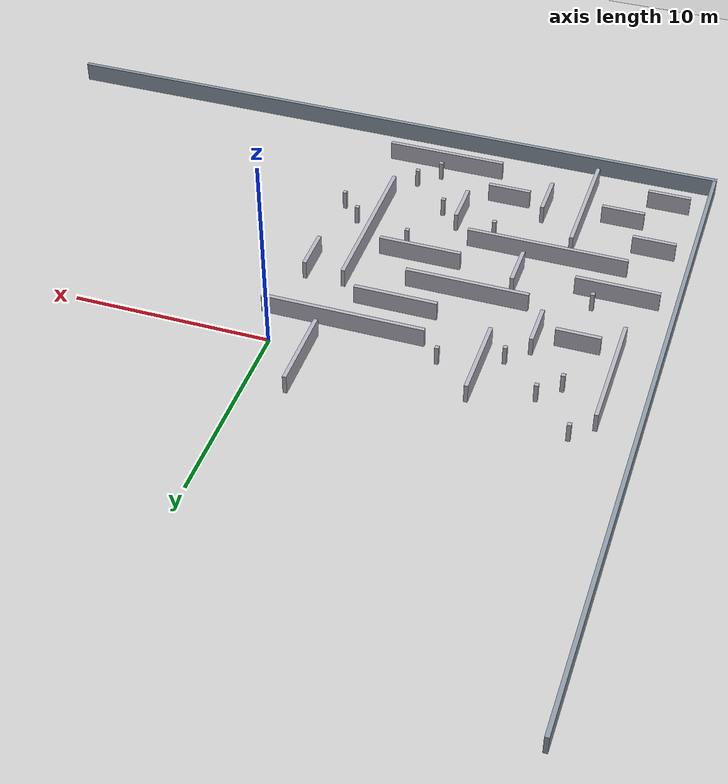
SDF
<sdf version="1.6">
 <world name="maze">
  <include><uri>model://sun</uri></include>
  <include><uri>model://ground_plane</uri></include>
  <model name="shell_s">
   <pose>0.000 -18.000 0.500 0 0 0</pose>
   <static>true</static>
   <link name="link">
    <collision name="collision"><geometry><box><size>36.200 0.200 1.000</size></box></geometry></collision>
    <visual name="visual">
     <geometry><box><size>36.200 0.200 1.000</size></box></geometry>
     <material><ambient>0.55 0.6 0.65 1</ambient><diffuse>0.55 0.6 0.65 1</diffuse></material>
    </visual>
   </link>
  </model>
  <model name="shell_w">
   <pose>-18.000 0.000 0.500 0 0 0</pose>
   <static>true</static>
   <link name="link">
    <collision name="collision"><geometry><box><size>0.200 36.200 1.000</size></box></geometry></collision>
    <visual name="visual">
     <geometry><box><size>0.200 36.200 1.000</size></box></geometry>
     <material><ambient>0.55 0.6 0.65 1</ambient><diffuse>0.55 0.6 0.65 1</diffuse></material>
    </visual>
   </link>
  </model>
  <model name="mv000">
   <pose>-16.000 -2.000 0.500 0 0 0</pose>
   <static>true</static>
   <link name="link">
    <collision name="collision"><geometry><box><size>0.200 6.200 1.000</size></box></geometry></collision>
    <visual name="visual">
     <geometry><box><size>0.200 6.200 1.000</size></box></geometry>
     <material><ambient>0.7 0.7 0.75 1</ambient><diffuse>0.7 0.7 0.75 1</diffuse></material>
    </visual>
   </link>
  </model>
  <model name="mv003">
   <pose>-14.000 -7.000 0.500 0 0 0</pose>
   <static>true</static>
   <link name="link">
    <collision name="collision"><geometry><box><size>0.200 0.200 1.000</size></box></geometry></collision>
    <visual name="visual">
     <geometry><box><size>0.200 0.200 1.000</size></box></geometry>
     <material><ambient>0.7 0.7 0.75 1</ambient><diffuse>0.7 0.7 0.75 1</diffuse></material>
    </visual>
   </link>
  </model>
  <model name="mv004">
   <pose>-14.000 -1.000 0.500 0 0 0</pose>
   <static>true</static>
   <link name="link">
    <collision name="collision"><geometry><box><size>0.200 0.200 1.000</size></box></geometry></collision>
    <visual name="visual">
     <geometry><box><size>0.200 0.200 1.000</size></box></geometry>
     <material><ambient>0.7 0.7 0.75 1</ambient><diffuse>0.7 0.7 0.75 1</diffuse></material>
    </visual>
   </link>
  </model>
  <model name="mv006">
   <pose>-12.000 -14.000 0.500 0 0 0</pose>
   <static>true</static>
   <link name="link">
    <collision name="collision"><geometry><box><size>0.200 6.200 1.000</size></box></geometry></collision>
    <visual name="visual">
     <geometry><box><size>0.200 6.200 1.000</size></box></geometry>
     <material><ambient>0.7 0.7 0.75 1</ambient><diffuse>0.7 0.7 0.75 1</diffuse></material>
    </visual>
   </link>
  </model>
  <model name="mv007">
   <pose>-12.000 -4.000 0.500 0 0 0</pose>
   <static>true</static>
   <link name="link">
    <collision name="collision"><geometry><box><size>0.200 2.200 1.000</size></box></geometry></collision>
    <visual name="visual">
     <geometry><box><size>0.200 2.200 1.000</size></box></geometry>
     <material><ambient>0.7 0.7 0.75 1</ambient><diffuse>0.7 0.7 0.75 1</diffuse></material>
    </visual>
   </link>
  </model>
  <model name="mv011">
   <pose>-10.000 -14.000 0.500 0 0 0</pose>
   <static>true</static>
   <link name="link">
    <collision name="collision"><geometry><box><size>0.200 2.200 1.000</size></box></geometry></collision>
    <visual name="visual">
     <geometry><box><size>0.200 2.200 1.000</size></box></geometry>
     <material><ambient>0.7 0.7 0.75 1</ambient><diffuse>0.7 0.7 0.75 1</diffuse></material>
    </visual>
   </link>
  </model>
  <model name="mv012">
   <pose>-10.000 -8.000 0.500 0 0 0</pose>
   <static>true</static>
   <link name="link">
    <collision name="collision"><geometry><box><size>0.200 2.200 1.000</size></box></geometry></collision>
    <visual name="visual">
     <geometry><box><size>0.200 2.200 1.000</size></box></geometry>
     <material><ambient>0.7 0.7 0.75 1</ambient><diffuse>0.7 0.7 0.75 1</diffuse></material>
    </visual>
   </link>
  </model>
  <model name="mv013">
   <pose>-10.000 -1.000 0.500 0 0 0</pose>
   <static>true</static>
   <link name="link">
    <collision name="collision"><geometry><box><size>0.200 4.200 1.000</size></box></geometry></collision>
    <visual name="visual">
     <geometry><box><size>0.200 4.200 1.000</size></box></geometry>
     <material><ambient>0.7 0.7 0.75 1</ambient><diffuse>0.7 0.7 0.75 1</diffuse></material>
    </visual>
   </link>
  </model>
  <model name="mv016">
   <pose>-8.000 -11.000 0.500 0 0 0</pose>
   <static>true</static>
   <link name="link">
    <collision name="collision"><geometry><box><size>0.200 0.200 1.000</size></box></geometry></collision>
    <visual name="visual">
     <geometry><box><size>0.200 0.200 1.000</size></box></geometry>
     <material><ambient>0.7 0.7 0.75 1</ambient><diffuse>0.7 0.7 0.75 1</diffuse></material>
    </visual>
   </link>
  </model>
  <model name="mv017">
   <pose>-8.000 -1.000 0.500 0 0 0</pose>
   <static>true</static>
   <link name="link">
    <collision name="collision"><geometry><box><size>0.200 0.200 1.000</size></box></geometry></collision>
    <visual name="visual">
     <geometry><box><size>0.200 0.200 1.000</size></box></geometry>
     <material><ambient>0.7 0.7 0.75 1</ambient><diffuse>0.7 0.7 0.75 1</diffuse></material>
    </visual>
   </link>
  </model>
  <model name="mv020">
   <pose>-6.000 -12.000 0.500 0 0 0</pose>
   <static>true</static>
   <link name="link">
    <collision name="collision"><geometry><box><size>0.200 2.200 1.000</size></box></geometry></collision>
    <visual name="visual">
     <geometry><box><size>0.200 2.200 1.000</size></box></geometry>
     <material><ambient>0.7 0.7 0.75 1</ambient><diffuse>0.7 0.7 0.75 1</diffuse></material>
    </visual>
   </link>
  </model>
  <model name="mv023">
   <pose>-4.000 -15.000 0.500 0 0 0</pose>
   <static>true</static>
   <link name="link">
    <collision name="collision"><geometry><box><size>0.200 0.200 1.000</size></box></geometry></collision>
    <visual name="visual">
     <geometry><box><size>0.200 0.200 1.000</size></box></geometry>
     <material><ambient>0.7 0.7 0.75 1</ambient><diffuse>0.7 0.7 0.75 1</diffuse></material>
    </visual>
   </link>
  </model>
  <model name="mv024">
   <pose>-4.000 -9.000 0.500 0 0 0</pose>
   <static>true</static>
   <link name="link">
    <collision name="collision"><geometry><box><size>0.200 0.200 1.000</size></box></geometry></collision>
    <visual name="visual">
     <geometry><box><size>0.200 0.200 1.000</size></box></geometry>
     <material><ambient>0.7 0.7 0.75 1</ambient><diffuse>0.7 0.7 0.75 1</diffuse></material>
    </visual>
   </link>
  </model>
  <model name="mv027">
   <pose>-2.000 -9.000 0.500 0 0 0</pose>
   <static>true</static>
   <link name="link">
    <collision name="collision"><geometry><box><size>0.200 8.200 1.000</size></box></geometry></collision>
    <visual name="visual">
     <geometry><box><size>0.200 8.200 1.000</size></box></geometry>
     <material><ambient>0.7 0.7 0.75 1</ambient><diffuse>0.7 0.7 0.75 1</diffuse></material>
    </visual>
   </link>
  </model>
  <model name="mv028">
   <pose>-2.000 1.000 0.500 0 0 0</pose>
   <static>true</static>
   <link name="link">
    <collision name="collision"><geometry><box><size>0.200 4.200 1.000</size></box></geometry></collision>
    <visual name="visual">
     <geometry><box><size>0.200 4.200 1.000</size></box></geometry>
     <material><ambient>0.7 0.7 0.75 1</ambient><diffuse>0.7 0.7 0.75 1</diffuse></material>
    </visual>
   </link>
  </model>
  <model name="mv031">
   <pose>0.000 -11.000 0.500 0 0 0</pose>
   <static>true</static>
   <link name="link">
    <collision name="collision"><geometry><box><size>0.200 0.200 1.000</size></box></geometry></collision>
    <visual name="visual">
     <geometry><box><size>0.200 0.200 1.000</size></box></geometry>
     <material><ambient>0.7 0.7 0.75 1</ambient><diffuse>0.7 0.7 0.75 1</diffuse></material>
    </visual>
   </link>
  </model>
  <model name="mv032">
   <pose>0.000 -6.000 0.500 0 0 0</pose>
   <static>true</static>
   <link name="link">
    <collision name="collision"><geometry><box><size>0.200 2.200 1.000</size></box></geometry></collision>
    <visual name="visual">
     <geometry><box><size>0.200 2.200 1.000</size></box></geometry>
     <material><ambient>0.7 0.7 0.75 1</ambient><diffuse>0.7 0.7 0.75 1</diffuse></material>
    </visual>
   </link>
  </model>
  <model name="mh000">
   <pose>-16.000 -16.000 0.500 0 0 0</pose>
   <static>true</static>
   <link name="link">
    <collision name="collision"><geometry><box><size>2.200 0.200 1.000</size></box></geometry></collision>
    <visual name="visual">
     <geometry><box><size>2.200 0.200 1.000</size></box></geometry>
     <material><ambient>0.7 0.7 0.75 1</ambient><diffuse>0.7 0.7 0.75 1</diffuse></material>
    </visual>
   </link>
  </model>
  <model name="mh001">
   <pose>-4.000 -16.000 0.500 0 0 0</pose>
   <static>true</static>
   <link name="link">
    <collision name="collision"><geometry><box><size>6.200 0.200 1.000</size></box></geometry></collision>
    <visual name="visual">
     <geometry><box><size>6.200 0.200 1.000</size></box></geometry>
     <material><ambient>0.7 0.7 0.75 1</ambient><diffuse>0.7 0.7 0.75 1</diffuse></material>
    </visual>
   </link>
  </model>
  <model name="mh004">
   <pose>-14.000 -14.000 0.500 0 0 0</pose>
   <static>true</static>
   <link name="link">
    <collision name="collision"><geometry><box><size>2.200 0.200 1.000</size></box></geometry></collision>
    <visual name="visual">
     <geometry><box><size>2.200 0.200 1.000</size></box></geometry>
     <material><ambient>0.7 0.7 0.75 1</ambient><diffuse>0.7 0.7 0.75 1</diffuse></material>
    </visual>
   </link>
  </model>
  <model name="mh005">
   <pose>-8.000 -14.000 0.500 0 0 0</pose>
   <static>true</static>
   <link name="link">
    <collision name="collision"><geometry><box><size>2.200 0.200 1.000</size></box></geometry></collision>
    <visual name="visual">
     <geometry><box><size>2.200 0.200 1.000</size></box></geometry>
     <material><ambient>0.7 0.7 0.75 1</ambient><diffuse>0.7 0.7 0.75 1</diffuse></material>
    </visual>
   </link>
  </model>
  <model name="mh006">
   <pose>-3.000 -14.000 0.500 0 0 0</pose>
   <static>true</static>
   <link name="link">
    <collision name="collision"><geometry><box><size>0.200 0.200 1.000</size></box></geometry></collision>
    <visual name="visual">
     <geometry><box><size>0.200 0.200 1.000</size></box></geometry>
     <material><ambient>0.7 0.7 0.75 1</ambient><diffuse>0.7 0.7 0.75 1</diffuse></material>
    </visual>
   </link>
  </model>
  <model name="mh009">
   <pose>-16.000 -12.000 0.500 0 0 0</pose>
   <static>true</static>
   <link name="link">
    <collision name="collision"><geometry><box><size>2.200 0.200 1.000</size></box></geometry></collision>
    <visual name="visual">
     <geometry><box><size>2.200 0.200 1.000</size></box></geometry>
     <material><ambient>0.7 0.7 0.75 1</ambient><diffuse>0.7 0.7 0.75 1</diffuse></material>
    </visual>
   </link>
  </model>
  <model name="mh010">
   <pose>-5.000 -12.000 0.500 0 0 0</pose>
   <static>true</static>
   <link name="link">
    <collision name="collision"><geometry><box><size>0.200 0.200 1.000</size></box></geometry></collision>
    <visual name="visual">
     <geometry><box><size>0.200 0.200 1.000</size></box></geometry>
     <material><ambient>0.7 0.7 0.75 1</ambient><diffuse>0.7 0.7 0.75 1</diffuse></material>
    </visual>
   </link>
  </model>
  <model name="mh013">
   <pose>-11.000 -10.000 0.500 0 0 0</pose>
   <static>true</static>
   <link name="link">
    <collision name="collision"><geometry><box><size>8.200 0.200 1.000</size></box></geometry></collision>
    <visual name="visual">
     <geometry><box><size>8.200 0.200 1.000</size></box></geometry>
     <material><ambient>0.7 0.7 0.75 1</ambient><diffuse>0.7 0.7 0.75 1</diffuse></material>
    </visual>
   </link>
  </model>
  <model name="mh014">
   <pose>-1.000 -10.000 0.500 0 0 0</pose>
   <static>true</static>
   <link name="link">
    <collision name="collision"><geometry><box><size>0.200 0.200 1.000</size></box></geometry></collision>
    <visual name="visual">
     <geometry><box><size>0.200 0.200 1.000</size></box></geometry>
     <material><ambient>0.7 0.7 0.75 1</ambient><diffuse>0.7 0.7 0.75 1</diffuse></material>
    </visual>
   </link>
  </model>
  <model name="mh017">
   <pose>-15.000 -8.000 0.500 0 0 0</pose>
   <static>true</static>
   <link name="link">
    <collision name="collision"><geometry><box><size>4.200 0.200 1.000</size></box></geometry></collision>
    <visual name="visual">
     <geometry><box><size>4.200 0.200 1.000</size></box></geometry>
     <material><ambient>0.7 0.7 0.75 1</ambient><diffuse>0.7 0.7 0.75 1</diffuse></material>
    </visual>
   </link>
  </model>
  <model name="mh018">
   <pose>-5.000 -8.000 0.500 0 0 0</pose>
   <static>true</static>
   <link name="link">
    <collision name="collision"><geometry><box><size>4.200 0.200 1.000</size></box></geometry></collision>
    <visual name="visual">
     <geometry><box><size>4.200 0.200 1.000</size></box></geometry>
     <material><ambient>0.7 0.7 0.75 1</ambient><diffuse>0.7 0.7 0.75 1</diffuse></material>
    </visual>
   </link>
  </model>
  <model name="mh021">
   <pose>-8.000 -6.000 0.500 0 0 0</pose>
   <static>true</static>
   <link name="link">
    <collision name="collision"><geometry><box><size>6.200 0.200 1.000</size></box></geometry></collision>
    <visual name="visual">
     <geometry><box><size>6.200 0.200 1.000</size></box></geometry>
     <material><ambient>0.7 0.7 0.75 1</ambient><diffuse>0.7 0.7 0.75 1</diffuse></material>
    </visual>
   </link>
  </model>
  <model name="mh024">
   <pose>-14.000 -4.000 0.500 0 0 0</pose>
   <static>true</static>
   <link name="link">
    <collision name="collision"><geometry><box><size>2.200 0.200 1.000</size></box></geometry></collision>
    <visual name="visual">
     <geometry><box><size>2.200 0.200 1.000</size></box></geometry>
     <material><ambient>0.7 0.7 0.75 1</ambient><diffuse>0.7 0.7 0.75 1</diffuse></material>
    </visual>
   </link>
  </model>
  <model name="mh025">
   <pose>-5.000 -4.000 0.500 0 0 0</pose>
   <static>true</static>
   <link name="link">
    <collision name="collision"><geometry><box><size>4.200 0.200 1.000</size></box></geometry></collision>
    <visual name="visual">
     <geometry><box><size>4.200 0.200 1.000</size></box></geometry>
     <material><ambient>0.7 0.7 0.75 1</ambient><diffuse>0.7 0.7 0.75 1</diffuse></material>
    </visual>
   </link>
  </model>
  <model name="mh029">
   <pose>-11.000 -2.000 0.500 0 0 0</pose>
   <static>true</static>
   <link name="link">
    <collision name="collision"><geometry><box><size>0.200 0.200 1.000</size></box></geometry></collision>
    <visual name="visual">
     <geometry><box><size>0.200 0.200 1.000</size></box></geometry>
     <material><ambient>0.7 0.7 0.75 1</ambient><diffuse>0.7 0.7 0.75 1</diffuse></material>
    </visual>
   </link>
  </model>
  <model name="mh030">
   <pose>-3.000 -2.000 0.500 0 0 0</pose>
   <static>true</static>
   <link name="link">
    <collision name="collision"><geometry><box><size>8.200 0.200 1.000</size></box></geometry></collision>
    <visual name="visual">
     <geometry><box><size>8.200 0.200 1.000</size></box></geometry>
     <material><ambient>0.7 0.7 0.75 1</ambient><diffuse>0.7 0.7 0.75 1</diffuse></material>
    </visual>
   </link>
  </model>
  <model name="mh032">
   <pose>-13.000 0.000 0.500 0 0 0</pose>
   <static>true</static>
   <link name="link">
    <collision name="collision"><geometry><box><size>0.200 0.200 1.000</size></box></geometry></collision>
    <visual name="visual">
     <geometry><box><size>0.200 0.200 1.000</size></box></geometry>
     <material><ambient>0.7 0.7 0.75 1</ambient><diffuse>0.7 0.7 0.75 1</diffuse></material>
    </visual>
   </link>
  </model>
  <model name="mh036">
   <pose>-15.000 2.000 0.500 0 0 0</pose>
   <static>true</static>
   <link name="link">
    <collision name="collision"><geometry><box><size>0.200 0.200 1.000</size></box></geometry></collision>
    <visual name="visual">
     <geometry><box><size>0.200 0.200 1.000</size></box></geometry>
     <material><ambient>0.7 0.7 0.75 1</ambient><diffuse>0.7 0.7 0.75 1</diffuse></material>
    </visual>
   </link>
  </model>
 </world>
</sdf>
